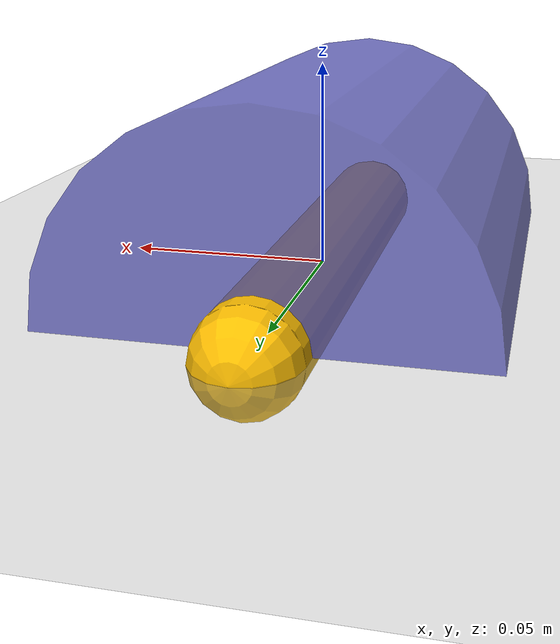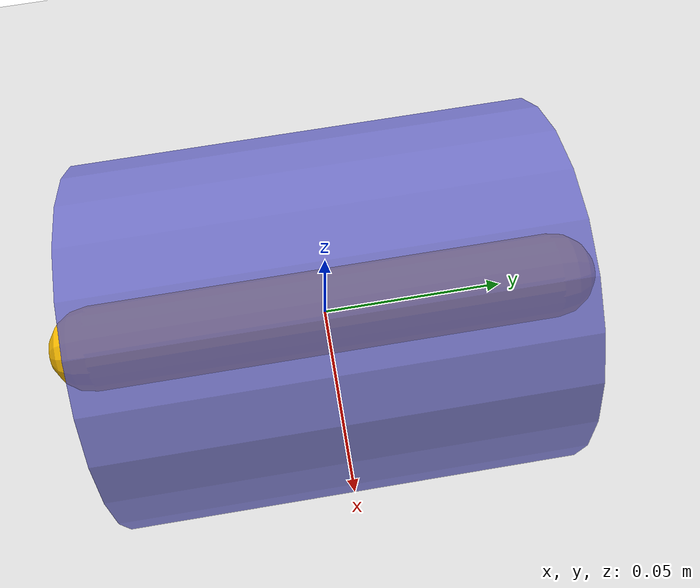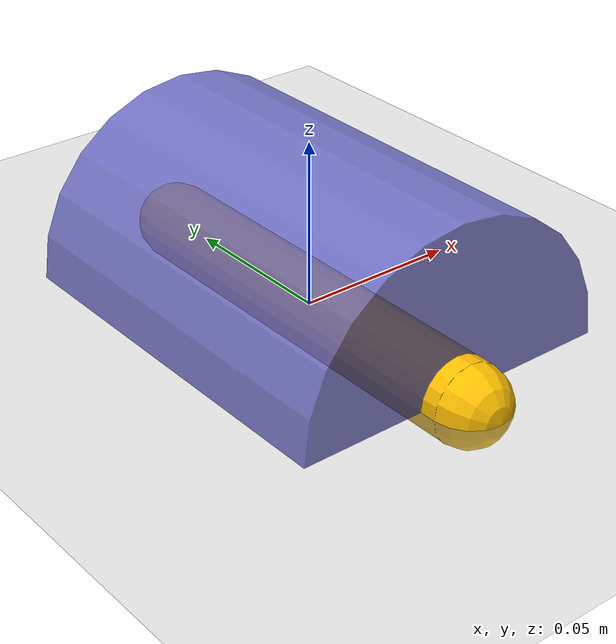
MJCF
<mujoco model="ancf_single_tire_wheel_geo">
  <compiler angle="radian"/>
  <option gravity="0 0 -9.81"/>
  <default>
    <joint damping="0.5"/>
  </default>

  <worldbody>
    <light pos="0 0 4" dir="0 0 -1" diffuse="0.8 0.8 0.8"/>
    <geom name="ground" type="plane" size="10 10 0.1" rgba="0.65 0.65 0.65 1"/>

    <body name="carrier" pos="0 0 0">
      <!-- slide_z damping=100 N·s/m: limits terminal velocity to M·g/D=0.49 m/s -->
      <joint name="slide_z" type="slide" axis="0 0 1" damping="100"/>
      <inertial mass="1e-3" pos="0 0 0" diaginertia="1e-6 1e-6 1e-6"/>

      <body name="spindle" pos="0 0 0">
        <joint name="spin_y" type="hinge" axis="0 1 0"/>
        <!-- 5 kg spindle: solid cylinder R=0.05 m, L=0.12 m -->
        <inertial mass="5.0" pos="0 0 0" diaginertia="0.00913 0.00625 0.00913"/>
        <geom name="hub_vis" type="cylinder" size="0.05 0.06"
              euler="1.5708 0 0" rgba="0.35 0.35 0.75 0.80"
              contype="0" conaffinity="0"/>
        <geom name="axle_vis" type="capsule" size="0.012 0.065"
              euler="1.5708 0 0" rgba="1.0 0.75 0.0 1.0"
              contype="0" conaffinity="0"/>
      </body>
    </body>
  </worldbody>

  <actuator>
    <motor name="spin_motor" joint="spin_y" ctrllimited="false"/>
  </actuator>
</mujoco>
